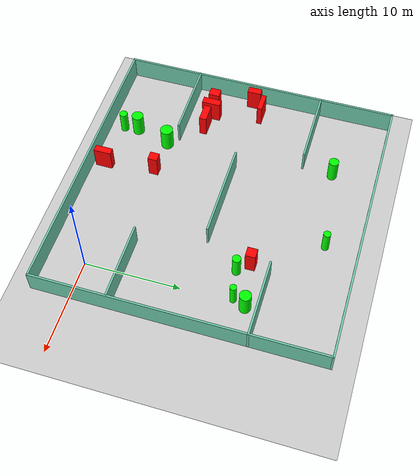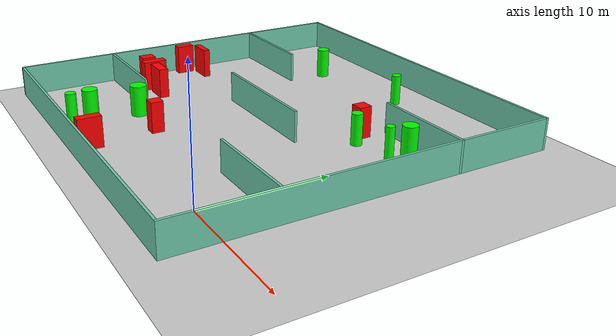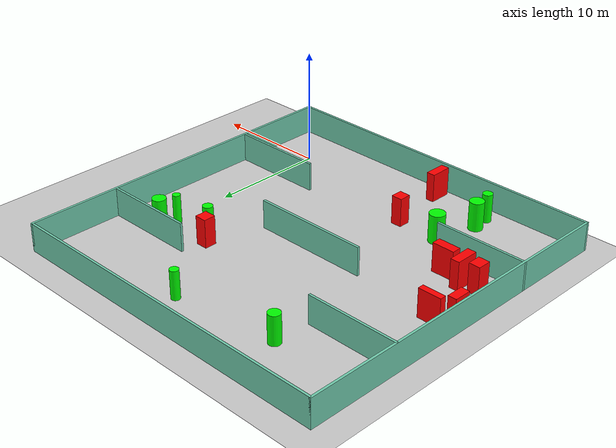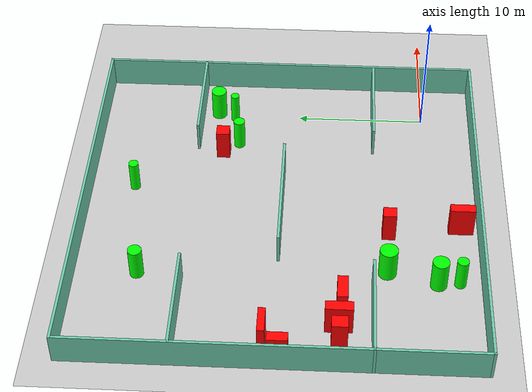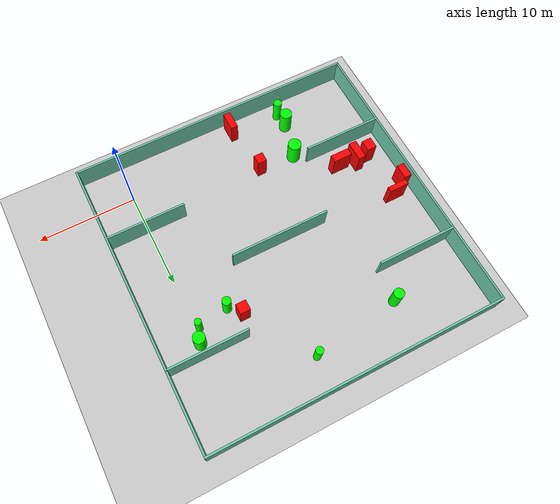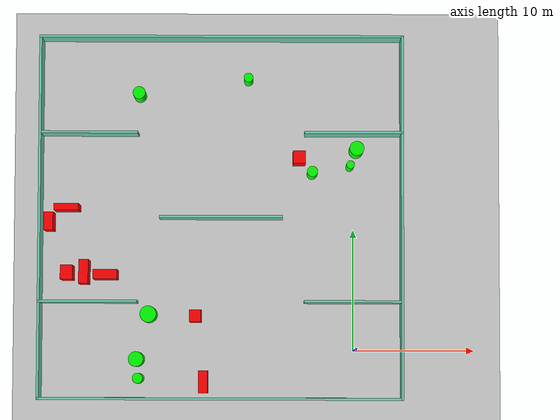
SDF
<sdf version="1.7">
 <world name="default">
  <light name="sun" type="directional">
   <pose>0 0 10 0 -0 0</pose>
   <diffuse>0.8 0.8 0.8 1</diffuse>
   <specular>0.2 0.2 0.2 1</specular>
   <attenuation>
    <range>1000</range>
    <constant>0.9</constant>
    <linear>0.01</linear>
    <quadratic>0.001</quadratic>
   </attenuation>
   <direction>-0.5 0.1 -0.9</direction>
   <spot><inner_angle>0</inner_angle><outer_angle>0</outer_angle><falloff>0</falloff></spot>
  </light>
  <model name="ground_plane">
   <static>1</static>
   <link name="link">
    <collision name="collision">
     <geometry><plane><normal>0 0 1</normal><size>100 100</size></plane></geometry>
     <surface>
      <contact><collide_bitmask>65535</collide_bitmask></contact>
      <friction><ode><mu>100</mu><mu2>50</mu2></ode></friction>
     </surface>
    </collision>
    <visual name="visual">
     <cast_shadows>0</cast_shadows>
     <geometry><plane><normal>0 0 1</normal><size>100 100</size></plane></geometry>
     <material>
      <script><uri>file://media/materials/scripts/gazebo.material</uri><name>Gazebo/Grey</name></script>
     </material>
    </visual>
   </link>
  </model>
  <gravity>0 0 -9.8</gravity>
  <magnetic_field>6e-06 2.3e-05 -4.2e-05</magnetic_field>
  <atmosphere type="adiabatic"/>
  <physics type="ode">
   <max_step_size>0.001</max_step_size>
   <real_time_factor>1</real_time_factor>
   <real_time_update_rate>1000</real_time_update_rate>
  </physics>
  <scene><ambient>0.4 0.4 0.4 1</ambient><background>0.7 0.7 0.7 1</background><shadows>1</shadows></scene>
  <spherical_coordinates>
   <surface_model>EARTH_WGS84</surface_model>
   <latitude_deg>0</latitude_deg>
   <longitude_deg>0</longitude_deg>
   <elevation>0</elevation>
   <heading_deg>0</heading_deg>
  </spherical_coordinates>
  <model name="my_base_walls">
   <link name="Wall_10">
    <collision name="Wall_10_Collision">
     <geometry><box><size>8.2 0.2 2.5</size></box></geometry>
     <pose>0 0 1.25 0 -0 0</pose>
    </collision>
    <visual name="Wall_10_Visual">
     <pose>0 0 1.25 0 -0 0</pose>
     <geometry><box><size>8.2 0.2 2.5</size></box></geometry>
     <material>
      <script><uri>file://media/materials/scripts/gazebo.material</uri><name>Gazebo/Grey</name></script>
      <ambient>0.435294 0.796078 0.67451 1</ambient>
     </material>
     <meta><layer>0</layer></meta>
    </visual>
    <pose>-11 -7 0 0 -0 0</pose>
   </link>
   <link name="Wall_12">
    <collision name="Wall_12_Collision">
     <geometry><box><size>8.2 0.2 2.5</size></box></geometry>
     <pose>0 0 1.25 0 -0 0</pose>
    </collision>
    <visual name="Wall_12_Visual">
     <pose>0 0 1.25 0 -0 0</pose>
     <geometry><box><size>8.2 0.2 2.5</size></box></geometry>
     <material>
      <script><uri>file://media/materials/scripts/gazebo.material</uri><name>Gazebo/Grey</name></script>
      <ambient>0.435294 0.796078 0.67451 1</ambient>
     </material>
     <meta><layer>0</layer></meta>
    </visual>
    <pose>-11 7 0 0 -0 0</pose>
   </link>
   <link name="Wall_14">
    <collision name="Wall_14_Collision">
     <geometry><box><size>8.2 0.2 2.5</size></box></geometry>
     <pose>0 0 1.25 0 -0 0</pose>
    </collision>
    <visual name="Wall_14_Visual">
     <pose>0 0 1.25 0 -0 0</pose>
     <geometry><box><size>8.2 0.2 2.5</size></box></geometry>
     <material>
      <script><uri>file://media/materials/scripts/gazebo.material</uri><name>Gazebo/Grey</name></script>
      <ambient>0.435294 0.796078 0.67451 1</ambient>
     </material>
     <meta><layer>0</layer></meta>
    </visual>
    <pose>11 7 0 0 -0 3.14159</pose>
   </link>
   <link name="Wall_16">
    <collision name="Wall_16_Collision">
     <geometry><box><size>10.2 0.2 2.5</size></box></geometry>
     <pose>0 0 1.25 0 -0 0</pose>
    </collision>
    <visual name="Wall_16_Visual">
     <pose>0 0 1.25 0 -0 0</pose>
     <geometry><box><size>10.2 0.2 2.5</size></box></geometry>
     <material>
      <script><uri>file://media/materials/scripts/gazebo.material</uri><name>Gazebo/Grey</name></script>
      <ambient>0.435294 0.796078 0.67451 1</ambient>
     </material>
     <meta><layer>0</layer></meta>
    </visual>
    <pose>0 0 0 0 -0 3.14159</pose>
   </link>
   <link name="Wall_2">
    <collision name="Wall_2_Collision">
     <geometry><box><size>30.2 0.2 2.5</size></box></geometry>
     <pose>0 0 1.25 0 -0 0</pose>
    </collision>
    <visual name="Wall_2_Visual">
     <pose>0 0 1.25 0 -0 0</pose>
     <geometry><box><size>30.2 0.2 2.5</size></box></geometry>
     <material>
      <script><uri>file://media/materials/scripts/gazebo.material</uri><name>Gazebo/Grey</name></script>
      <ambient>0.435294 0.796078 0.67451 1</ambient>
     </material>
     <meta><layer>0</layer></meta>
    </visual>
    <pose>0 -15 0 0 -0 3.14159</pose>
   </link>
   <link name="Wall_3">
    <collision name="Wall_3_Collision">
     <geometry><box><size>30.2 0.2 2.5</size></box></geometry>
     <pose>0 0 1.25 0 -0 0</pose>
    </collision>
    <visual name="Wall_3_Visual">
     <pose>0 0 1.25 0 -0 0</pose>
     <geometry><box><size>30.2 0.2 2.5</size></box></geometry>
     <material>
      <script><uri>file://media/materials/scripts/gazebo.material</uri><name>Gazebo/Grey</name></script>
      <ambient>0.435294 0.796078 0.67451 1</ambient>
     </material>
     <meta><layer>0</layer></meta>
    </visual>
    <pose>-15 0 0 0 -0 1.5708</pose>
   </link>
   <link name="Wall_4">
    <collision name="Wall_4_Collision">
     <geometry><box><size>30.2 0.2 2.5</size></box></geometry>
     <pose>0 0 1.25 0 -0 0</pose>
    </collision>
    <visual name="Wall_4_Visual">
     <pose>0 0 1.25 0 -0 0</pose>
     <geometry><box><size>30.2 0.2 2.5</size></box></geometry>
     <material>
      <script><uri>file://media/materials/scripts/gazebo.material</uri><name>Gazebo/Grey</name></script>
      <ambient>0.435294 0.796078 0.67451 1</ambient>
     </material>
     <meta><layer>0</layer></meta>
    </visual>
    <pose>0 15 0 0 -0 0</pose>
   </link>
   <link name="Wall_6">
    <collision name="Wall_6_Collision">
     <geometry><box><size>30.2 0.2 2.5</size></box></geometry>
     <pose>0 0 1.25 0 -0 0</pose>
    </collision>
    <visual name="Wall_6_Visual">
     <pose>0 0 1.25 0 -0 0</pose>
     <geometry><box><size>30.2 0.2 2.5</size></box></geometry>
     <material>
      <script><uri>file://media/materials/scripts/gazebo.material</uri><name>Gazebo/Grey</name></script>
      <ambient>0.435294 0.796078 0.67451 1</ambient>
     </material>
     <meta><layer>0</layer></meta>
    </visual>
    <pose>15 0 0 0 -0 1.5708</pose>
   </link>
   <link name="Wall_8">
    <collision name="Wall_8_Collision">
     <geometry><box><size>8.2 0.2 2.5</size></box></geometry>
     <pose>0 0 1.25 0 -0 0</pose>
    </collision>
    <visual name="Wall_8_Visual">
     <pose>0 0 1.25 0 -0 0</pose>
     <geometry><box><size>8.2 0.2 2.5</size></box></geometry>
     <material>
      <script><uri>file://media/materials/scripts/gazebo.material</uri><name>Gazebo/Grey</name></script>
      <ambient>0.435294 0.796078 0.67451 1</ambient>
     </material>
     <meta><layer>0</layer></meta>
    </visual>
    <pose>11 -7 0 0 -0 3.14159</pose>
   </link>
   <static>1</static>
   <pose>-11 11 0 0 -0 0</pose>
  </model>
  <model name="cylinder1">
   <static>1</static>
   <link name="link">
    <inertial>
     <mass>1</mass>
     <inertia><ixx>0.5</ixx><ixy>0</ixy><ixz>0</ixz><iyy>0.5</iyy><iyz>0</iyz><izz>1</izz></inertia>
    </inertial>
    <collision name="collision">
     <geometry><cylinder><radius>0.3369757898289986</radius><length>2.5</length></cylinder></geometry>
    </collision>
    <visual name="visual">
     <geometry><cylinder><radius>0.3369757898289986</radius><length>2.5</length></cylinder></geometry>
     <material>
      <ambient>0 1 0 1</ambient>
      <diffuse>0 1 0 1</diffuse>
      <specular>0.1 0.1 0.1 1</specular>
      <emissive>0 0 0 0</emissive>
     </material>
    </visual>
   </link>
   <pose>-0.29512022838405017 15.326764817203415 1.25 0 0 0</pose>
  </model>
  <model name="cylinder2">
   <static>1</static>
   <link name="link">
    <inertial>
     <mass>1</mass>
     <inertia><ixx>0.5</ixx><ixy>0</ixy><ixz>0</ixz><iyy>0.5</iyy><iyz>0</iyz><izz>1</izz></inertia>
    </inertial>
    <collision name="collision">
     <geometry><cylinder><radius>0.4283376924349239</radius><length>2.5</length></cylinder></geometry>
    </collision>
    <visual name="visual">
     <geometry><cylinder><radius>0.4283376924349239</radius><length>2.5</length></cylinder></geometry>
     <material>
      <ambient>0 1 0 1</ambient>
      <diffuse>0 1 0 1</diffuse>
      <specular>0.1 0.1 0.1 1</specular>
      <emissive>0 0 0 0</emissive>
     </material>
    </visual>
   </link>
   <pose>-17.790472245560448 -2.3267243940463276 1.25 0 0 0</pose>
  </model>
  <model name="cylinder3">
   <static>1</static>
   <link name="link">
    <inertial>
     <mass>1</mass>
     <inertia><ixx>0.5</ixx><ixy>0</ixy><ixz>0</ixz><iyy>0.5</iyy><iyz>0</iyz><izz>1</izz></inertia>
    </inertial>
    <collision name="collision">
     <geometry><cylinder><radius>0.37668254178164007</radius><length>2.5</length></cylinder></geometry>
    </collision>
    <visual name="visual">
     <geometry><cylinder><radius>0.37668254178164007</radius><length>2.5</length></cylinder></geometry>
     <material>
      <ambient>0 1 0 1</ambient>
      <diffuse>0 1 0 1</diffuse>
      <specular>0.1 0.1 0.1 1</specular>
      <emissive>0 0 0 0</emissive>
     </material>
    </visual>
   </link>
   <pose>-8.743952438881104 22.555816522061328 1.25 0 0 0</pose>
  </model>
  <model name="cylinder4">
   <static>1</static>
   <link name="link">
    <inertial>
     <mass>1</mass>
     <inertia><ixx>0.5</ixx><ixy>0</ixy><ixz>0</ixz><iyy>0.5</iyy><iyz>0</iyz><izz>1</izz></inertia>
    </inertial>
    <collision name="collision">
     <geometry><cylinder><radius>0.5169826432785638</radius><length>2.5</length></cylinder></geometry>
    </collision>
    <visual name="visual">
     <geometry><cylinder><radius>0.5169826432785638</radius><length>2.5</length></cylinder></geometry>
     <material>
      <ambient>0 1 0 1</ambient>
      <diffuse>0 1 0 1</diffuse>
      <specular>0.1 0.1 0.1 1</specular>
      <emissive>0 0 0 0</emissive>
     </material>
    </visual>
   </link>
   <pose>-17.808485375986116 21.280108104154515 1.25 0 0 0</pose>
  </model>
  <model name="cylinder5">
   <static>1</static>
   <link name="link">
    <inertial>
     <mass>1</mass>
     <inertia><ixx>0.5</ixx><ixy>0</ixy><ixz>0</ixz><iyy>0.5</iyy><iyz>0</iyz><izz>1</izz></inertia>
    </inertial>
    <collision name="collision">
     <geometry><cylinder><radius>0.6192464365526713</radius><length>2.5</length></cylinder></geometry>
    </collision>
    <visual name="visual">
     <geometry><cylinder><radius>0.6192464365526713</radius><length>2.5</length></cylinder></geometry>
     <material>
      <ambient>0 1 0 1</ambient>
      <diffuse>0 1 0 1</diffuse>
      <specular>0.1 0.1 0.1 1</specular>
      <emissive>0 0 0 0</emissive>
     </material>
    </visual>
   </link>
   <pose>-17.941977311182 -0.748963245406705 1.25 0 0 0</pose>
  </model>
  <model name="cylinder6">
   <static>1</static>
   <link name="link">
    <inertial>
     <mass>1</mass>
     <inertia><ixx>0.5</ixx><ixy>0</ixy><ixz>0</ixz><iyy>0.5</iyy><iyz>0</iyz><izz>1</izz></inertia>
    </inertial>
    <collision name="collision">
     <geometry><cylinder><radius>0.6767100483903488</radius><length>2.5</length></cylinder></geometry>
    </collision>
    <visual name="visual">
     <geometry><cylinder><radius>0.6767100483903488</radius><length>2.5</length></cylinder></geometry>
     <material>
      <ambient>0 1 0 1</ambient>
      <diffuse>0 1 0 1</diffuse>
      <specular>0.1 0.1 0.1 1</specular>
      <emissive>0 0 0 0</emissive>
     </material>
    </visual>
   </link>
   <pose>-16.958343945415503 2.950495882122807 1.25 0 0 0</pose>
  </model>
  <model name="cylinder7">
   <static>1</static>
   <link name="link">
    <inertial>
     <mass>1</mass>
     <inertia><ixx>0.5</ixx><ixy>0</ixy><ixz>0</ixz><iyy>0.5</iyy><iyz>0</iyz><izz>1</izz></inertia>
    </inertial>
    <collision name="collision">
     <geometry><cylinder><radius>0.5952697715156166</radius><length>2.5</length></cylinder></geometry>
    </collision>
    <visual name="visual">
     <geometry><cylinder><radius>0.5952697715156166</radius><length>2.5</length></cylinder></geometry>
     <material>
      <ambient>0 1 0 1</ambient>
      <diffuse>0 1 0 1</diffuse>
      <specular>0.1 0.1 0.1 1</specular>
      <emissive>0 0 0 0</emissive>
     </material>
    </visual>
   </link>
   <pose>0.23689743501638105 16.669511355682637 1.25 0 0 0</pose>
  </model>
  <model name="cylinder8">
   <static>1</static>
   <link name="link">
    <inertial>
     <mass>1</mass>
     <inertia><ixx>0.5</ixx><ixy>0</ixy><ixz>0</ixz><iyy>0.5</iyy><iyz>0</iyz><izz>1</izz></inertia>
    </inertial>
    <collision name="collision">
     <geometry><cylinder><radius>0.43836711388097205</radius><length>2.5</length></cylinder></geometry>
    </collision>
    <visual name="visual">
     <geometry><cylinder><radius>0.43836711388097205</radius><length>2.5</length></cylinder></geometry>
     <material>
      <ambient>0 1 0 1</ambient>
      <diffuse>0 1 0 1</diffuse>
      <specular>0.1 0.1 0.1 1</specular>
      <emissive>0 0 0 0</emissive>
     </material>
    </visual>
   </link>
   <pose>-3.4339734451633497 14.747614515954794 1.25 0 0 0</pose>
  </model>
  <model name="box1">
   <static>1</static>
   <link name="link">
    <inertial>
     <mass>1</mass>
     <inertia><ixx>0.083</ixx><ixy>0</ixy><ixz>0</ixz><iyy>0.083</iyy><iyz>0</iyz><izz>0.083</izz></inertia>
    </inertial>
    <collision name="collision">
     <geometry><box><size>1.0380652032645465 1.0390147102193972 2.5</size></box></geometry>
    </collision>
    <visual name="visual">
     <geometry><box><size>1.0380652032645465 1.0390147102193972 2.5</size></box></geometry>
     <material>
      <ambient>1 0 0 1</ambient>
      <diffuse>1 0 0 1</diffuse>
      <specular>0.1 0.1 0.1 1</specular>
      <emissive>0 0 0 0</emissive>
     </material>
    </visual>
    <sensor name="my_contact" type="contact">
     <contact><collision>box_collision</collision><topic>__default_topic__</topic></contact>
    </sensor>
   </link>
   <pose>-4.52588270477526 15.94691671884799 1.25 0 0 0</pose>
  </model>
  <model name="box2">
   <static>1</static>
   <link name="link">
    <inertial>
     <mass>1</mass>
     <inertia><ixx>0.083</ixx><ixy>0</ixy><ixz>0</ixz><iyy>0.083</iyy><iyz>0</iyz><izz>0.083</izz></inertia>
    </inertial>
    <collision name="collision">
     <geometry><box><size>0.9962271159405112 1.1610162145566054 2.5</size></box></geometry>
    </collision>
    <visual name="visual">
     <geometry><box><size>0.9962271159405112 1.1610162145566054 2.5</size></box></geometry>
     <material>
      <ambient>1 0 0 1</ambient>
      <diffuse>1 0 0 1</diffuse>
      <specular>0.1 0.1 0.1 1</specular>
      <emissive>0 0 0 0</emissive>
     </material>
    </visual>
    <sensor name="my_contact" type="contact">
     <contact><collision>box_collision</collision><topic>__default_topic__</topic></contact>
    </sensor>
   </link>
   <pose>-23.719216492448883 6.387922242971186 1.25 0 0 0</pose>
  </model>
  <model name="box3">
   <static>1</static>
   <link name="link">
    <inertial>
     <mass>1</mass>
     <inertia><ixx>0.083</ixx><ixy>0</ixy><ixz>0</ixz><iyy>0.083</iyy><iyz>0</iyz><izz>0.083</izz></inertia>
    </inertial>
    <collision name="collision">
     <geometry><box><size>2.0423887154305014 0.5325552102243265 2.5</size></box></geometry>
    </collision>
    <visual name="visual">
     <geometry><box><size>2.0423887154305014 0.5325552102243265 2.5</size></box></geometry>
     <material>
      <ambient>1 0 0 1</ambient>
      <diffuse>1 0 0 1</diffuse>
      <specular>0.1 0.1 0.1 1</specular>
      <emissive>0 0 0 0</emissive>
     </material>
    </visual>
    <sensor name="my_contact" type="contact">
     <contact><collision>box_collision</collision><topic>__default_topic__</topic></contact>
    </sensor>
   </link>
   <pose>-23.77151700770428 11.79223621097665 1.25 0 0 0</pose>
  </model>
  <model name="box4">
   <static>1</static>
   <link name="link">
    <inertial>
     <mass>1</mass>
     <inertia><ixx>0.083</ixx><ixy>0</ixy><ixz>0</ixz><iyy>0.083</iyy><iyz>0</iyz><izz>0.083</izz></inertia>
    </inertial>
    <collision name="collision">
     <geometry><box><size>0.7350109516662495 1.87313480495911 2.5</size></box></geometry>
    </collision>
    <visual name="visual">
     <geometry><box><size>0.7350109516662495 1.87313480495911 2.5</size></box></geometry>
     <material>
      <ambient>1 0 0 1</ambient>
      <diffuse>1 0 0 1</diffuse>
      <specular>0.1 0.1 0.1 1</specular>
      <emissive>0 0 0 0</emissive>
     </material>
    </visual>
    <sensor name="my_contact" type="contact">
     <contact><collision>box_collision</collision><topic>__default_topic__</topic></contact>
    </sensor>
   </link>
   <pose>-12.41704632888904 -2.6147982074356877 1.25 0 0 0</pose>
  </model>
  <model name="box5">
   <static>1</static>
   <link name="link">
    <inertial>
     <mass>1</mass>
     <inertia><ixx>0.083</ixx><ixy>0</ixy><ixz>0</ixz><iyy>0.083</iyy><iyz>0</iyz><izz>0.083</izz></inertia>
    </inertial>
    <collision name="collision">
     <geometry><box><size>0.7827631245581337 2.00025955145858 2.5</size></box></geometry>
    </collision>
    <visual name="visual">
     <geometry><box><size>0.7827631245581337 2.00025955145858 2.5</size></box></geometry>
     <material>
      <ambient>1 0 0 1</ambient>
      <diffuse>1 0 0 1</diffuse>
      <specular>0.1 0.1 0.1 1</specular>
      <emissive>0 0 0 0</emissive>
     </material>
    </visual>
    <sensor name="my_contact" type="contact">
     <contact><collision>box_collision</collision><topic>__default_topic__</topic></contact>
    </sensor>
   </link>
   <pose>-22.30460963210907 6.445935859553856 1.25 0 0 0</pose>
  </model>
  <model name="box6">
   <static>1</static>
   <link name="link">
    <inertial>
     <mass>1</mass>
     <inertia><ixx>0.083</ixx><ixy>0</ixy><ixz>0</ixz><iyy>0.083</iyy><iyz>0</iyz><izz>0.083</izz></inertia>
    </inertial>
    <collision name="collision">
     <geometry><box><size>0.9524544230609202 1.0044174424105499 2.5</size></box></geometry>
    </collision>
    <visual name="visual">
     <geometry><box><size>0.9524544230609202 1.0044174424105499 2.5</size></box></geometry>
     <material>
      <ambient>1 0 0 1</ambient>
      <diffuse>1 0 0 1</diffuse>
      <specular>0.1 0.1 0.1 1</specular>
      <emissive>0 0 0 0</emissive>
     </material>
    </visual>
    <sensor name="my_contact" type="contact">
     <contact><collision>box_collision</collision><topic>__default_topic__</topic></contact>
    </sensor>
   </link>
   <pose>-13.082504959209833 2.821947810037906 1.25 0 0 0</pose>
  </model>
  <model name="box7">
   <static>1</static>
   <link name="link">
    <inertial>
     <mass>1</mass>
     <inertia><ixx>0.083</ixx><ixy>0</ixy><ixz>0</ixz><iyy>0.083</iyy><iyz>0</iyz><izz>0.083</izz></inertia>
    </inertial>
    <collision name="collision">
     <geometry><box><size>0.7573111843586476 1.489003155144102 2.5</size></box></geometry>
    </collision>
    <visual name="visual">
     <geometry><box><size>0.7573111843586476 1.489003155144102 2.5</size></box></geometry>
     <material>
      <ambient>1 0 0 1</ambient>
      <diffuse>1 0 0 1</diffuse>
      <specular>0.1 0.1 0.1 1</specular>
      <emissive>0 0 0 0</emissive>
     </material>
    </visual>
    <sensor name="my_contact" type="contact">
     <contact><collision>box_collision</collision><topic>__default_topic__</topic></contact>
    </sensor>
   </link>
   <pose>-25.22081972850108 10.618230814246775 1.25 0 0 0</pose>
  </model>
  <model name="box8">
   <static>1</static>
   <link name="link">
    <inertial>
     <mass>1</mass>
     <inertia><ixx>0.083</ixx><ixy>0</ixy><ixz>0</ixz><iyy>0.083</iyy><iyz>0</iyz><izz>0.083</izz></inertia>
    </inertial>
    <collision name="collision">
     <geometry><box><size>1.957719467533304 0.7821290393498552 2.5</size></box></geometry>
    </collision>
    <visual name="visual">
     <geometry><box><size>1.957719467533304 0.7821290393498552 2.5</size></box></geometry>
     <material>
      <ambient>1 0 0 1</ambient>
      <diffuse>1 0 0 1</diffuse>
      <specular>0.1 0.1 0.1 1</specular>
      <emissive>0 0 0 0</emissive>
     </material>
    </visual>
    <sensor name="my_contact" type="contact">
     <contact><collision>box_collision</collision><topic>__default_topic__</topic></contact>
    </sensor>
   </link>
   <pose>-20.52725835042125 6.2298970566041305 1.25 0 0 0</pose>
  </model>
 </world>
</sdf>
